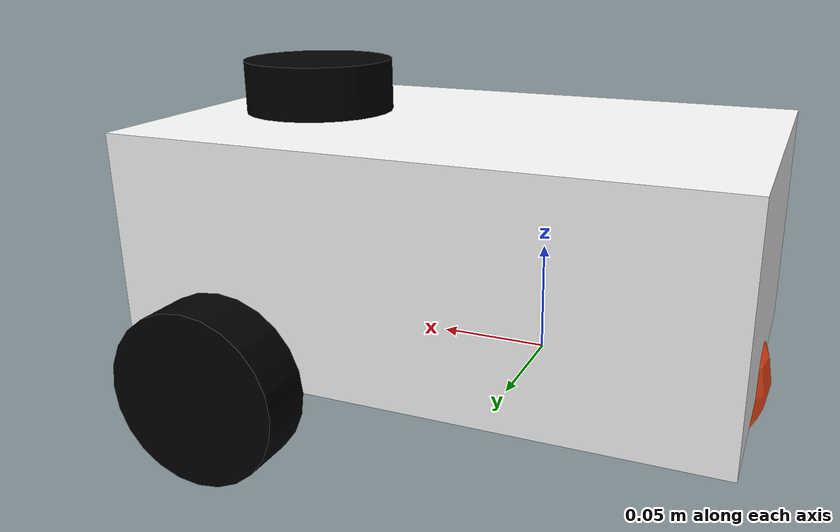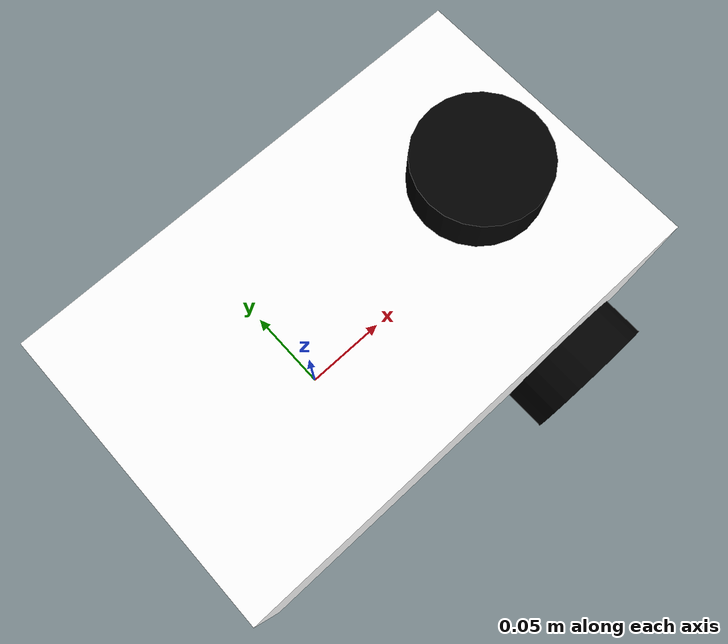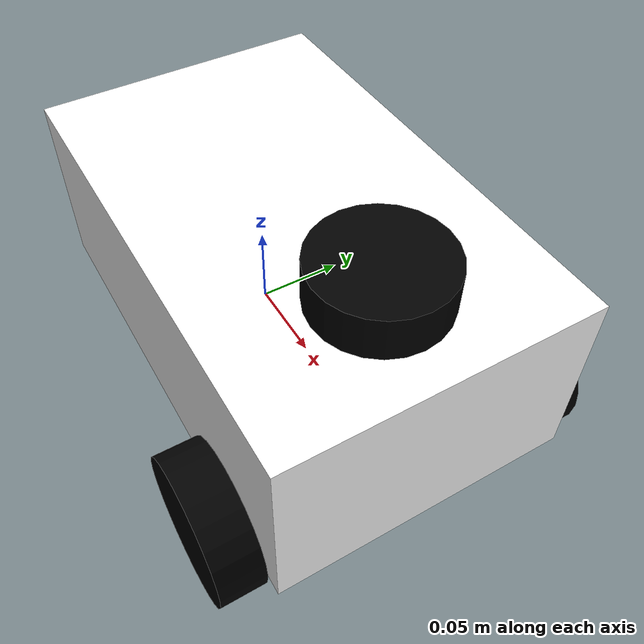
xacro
<?xml version="1.0"?>
<robot xmlns:xacro="http://www.ros.org/wiki/xacro"  name="robot">

    <xacro:include filename="robot_core.urdf.xacro" />
    <xacro:include filename="lidar.urdf.xacro" />

</robot>

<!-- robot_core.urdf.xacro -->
<robot xmlns:xacro="http://www.ros.org/wiki/xacro">

    <xacro:include filename="inertial.urdf.xacro"/>

    <material name="white">
        <color rgba="1 1 1 1" />
    </material>

    <material name="orange">
        <color rgba="1 0.3 0.1 1" />
    </material>

    <material name="blue">
        <color rgba="0.2 0.2 1 1" />
    </material>

    <material name="black">
        <color rgba="0 0 0 1" />
    </material>

<!--base link-->
    <link name="base_link">

    </link>
<!--BASE_FOOTPRINT LINK-->
    <joint name="base_footprint_joint" type="fixed">
        <parent link="base_link"/>
        <child link="base_footprint"/>
        <origin xyz="0 0 0" rpy="0 0 0"/>
    </joint>

    <link name="base_footprint">
    </link>

<!--chassis link-->

    <joint name="chassis_joint" type="fixed">
        <parent link="base_link"/>
        <child link="chassis"/>
        <origin xyz="-0.1 0 0"/>

    </joint>

    <link name="chassis">
        <visual>
            <origin xyz="0.135 0 0.052885"/>
            <geometry>
                <box size="0.27 0.168 0.10577"/>
            </geometry>
            <material name="white"/>
        </visual>
        <collision>
            <origin xyz="0.135 0 0.052885"/>
            <geometry>
                <box size="0.27 0.168 0.10577"/>
            </geometry>
        </collision>

        <xacro:inertial_box mass="0.750" x="0.27" y="0.168" z="0.10577">
            <origin xyz="0.135 0 0.052885" rpy="0 0 0"/>

        </xacro:inertial_box>

    </link>
    <gazebo reference="chassis">
        <material>Gazebo/white</material>
    </gazebo>

<!--Left wheel link-->

    <joint name="left_wheel_joint" type="continuous">
        <parent link="base_link"/>
        <child link="left_wheel"/>
        <origin xyz="0.12 0.0965 0" rpy="-${pi/2} 0 0"/>  <!-- we are rotating the whole bot 90 degrees wrt x axis..-->
        <axis xyz="0 0 1"/>
    </joint>

    <link name="left_wheel">
        <visual>
            <geometry>
                <cylinder radius="0.04" length="0.025"/>
            </geometry>
            <material name="black"/>
        </visual>
        <collision>
            <geometry>
                <sphere radius="0.04"/>
            </geometry>
        </collision>
        <xacro:inertial_cylinder mass="0.1" length="0.025" radius="0.04">
            <origin xyz = "0 0 0" rpy = "0 0 0 "/>
        </xacro:inertial_cylinder>
        </link>

        <gazebo reference="left_wheel">
            <material>Gazebo/Black</material>
        </gazebo>

<!--Right wheel link-->

    <joint name="right_wheel_joint" type="continuous">
        <parent link="base_link"/>
        <child link="right_wheel"/>
        <origin xyz="0.12 -0.0965 0" rpy="${pi/2} 0 0"/>  <!-- we are rotating the whole bot 90 degrees wrt x axis..-->
        <axis xyz="0 0 -1"/>
    </joint>

    <link name="right_wheel">
        <visual>
            <geometry>
                <cylinder radius="0.04" length="0.025"/>
            </geometry>
            <material name="black"/>
        </visual>
        <collision>
            <geometry>
                <sphere radius="0.04"/>
            </geometry>
            <material name="black"/>
        </collision>
        <xacro:inertial_cylinder mass="0.1" length="0.025" radius="0.04">
            <origin xyz = "0 0 0" rpy = "0 0 0 "/>
        </xacro:inertial_cylinder>
    </link>

    <gazebo reference="right_wheel">
        <material>Gazebo/Black</material>
    </gazebo>

    <!--Caster wheel -->
    <joint name="caster_wheel_left_joint" type="fixed">
        <parent link="chassis"/>
        <child link="caster_wheel_left"/>
        <origin xyz="0.035 0 0"/>
    </joint>

    <link name="caster_wheel_left">
        <visual>
            <geometry>
                <sphere radius="0.04"/>
            </geometry>
            <material name="orange"/>
        </visual>
        <collision>
            <geometry>
                <sphere radius="0.04"/>
            </geometry>
            <material name="orange"/>
        </collision>
        <xacro:inertial_sphere mass="0.05" radius="0.04">
            <origin xyz="0 0 0" rpy="0 0 0"/>
        </xacro:inertial_sphere>
    </link>
    <gazebo reference="caster_wheel_left">
        <material>Gazebo/Black</material>
        <mu1 value="0.001"/>
        <mu2 value="0.001"/>

    </gazebo>

</robot>

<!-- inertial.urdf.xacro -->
<robot xmlns:xacro="http://www.ros.org/wiki/xacro" >

    <!-- Specify some standard inertial calculations https://en.wikipedia.org/wiki/List_of_moments_of_inertia -->
    <!-- These make use of xacro's mathematical functionality -->

    <xacro:macro name="inertial_sphere" params="mass radius *origin">
        <inertial>
            <xacro:insert_block name="origin"/>
            <mass value="${mass}" />
            <inertia ixx="${(2/5) * mass * (radius*radius)}" ixy="0.0" ixz="0.0"
                    iyy="${(2/5) * mass * (radius*radius)}" iyz="0.0"
                    izz="${(2/5) * mass * (radius*radius)}" />
        </inertial>
    </xacro:macro>

    <xacro:macro name="inertial_box" params="mass x y z *origin">
        <inertial>
            <xacro:insert_block name="origin"/>
            <mass value="${mass}" />
            <inertia ixx="${(1/12) * mass * (y*y+z*z)}" ixy="0.0" ixz="0.0"
                    iyy="${(1/12) * mass * (x*x+z*z)}" iyz="0.0"
                    izz="${(1/12) * mass * (x*x+y*y)}" />
        </inertial>
    </xacro:macro>

    <xacro:macro name="inertial_cylinder" params="mass length radius *origin">
        <inertial>
            <xacro:insert_block name="origin"/>
            <mass value="${mass}" />
            <inertia ixx="${(1/12) * mass * (3*radius*radius + length*length)}" ixy="0.0" ixz="0.0"
                    iyy="${(1/12) * mass * (3*radius*radius + length*length)}" iyz="0.0"
                    izz="${(1/2) * mass * (radius*radius)}" />
        </inertial>
    </xacro:macro>

</robot>

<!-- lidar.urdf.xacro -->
<robot xmlns:xacro="http://www.ros.org/wiki/xacro" >

    <joint name="laser_joint" type="fixed">
        <parent link="chassis"/>
        <child link="laser_frame"/>
        <origin xyz="0.215 0 0.11" rpy="0 0 0"/>

    </joint>

    <link name="laser_frame">
        <visual>
            <geometry>
                <cylinder radius="0.035" length="0.04"/>
            </geometry>
            <material name="black"/>
        </visual>
        <collision>
            <geometry>
                <cylinder radius="0.035" length="0.04"/>
            </geometry>
        </collision>
        <xacro:inertial_cylinder mass="0.1" length="0.04" radius="0.035">
            <origin xyz = "0 0 0" rpy = "0 0 0 "/>
        </xacro:inertial_cylinder>
    </link>

     <gazebo reference="laser_frame">
        <material>Gazebo/Black</material>

        <sensor name="laser" type="ray">
            <pose> 0 0 0 0 0 0 </pose>
            <visualize>true</visualize>
            <update_rate>10</update_rate>
            <ray>
                <scan>
                    <horizontal>
                        <samples>360</samples>
                        <min_angle>-3.14</min_angle>
                        <max_angle>3.14</max_angle>
                    </horizontal>
                </scan>
                <range>
                    <min>0.3</min>
                    <max>12</max>
                </range>
            </ray>
            <plugin name="laser_controller" filename="libgazebo_ros_ray_sensor.so">
                <ros>
                    <argument>~/out:=scan</argument>
                </ros>
                <output_type>sensor_msgs/LaserScan</output_type>
                <frame_name>laser_frame</frame_name>
            </plugin>
        </sensor>
    </gazebo>

</robot>
